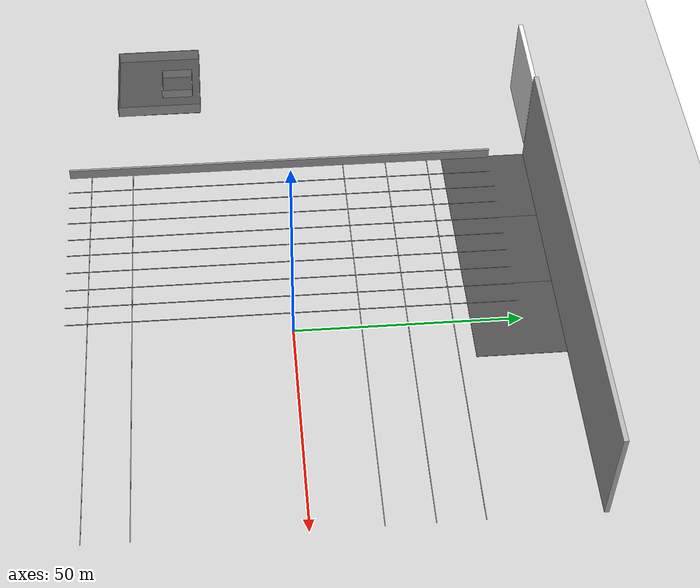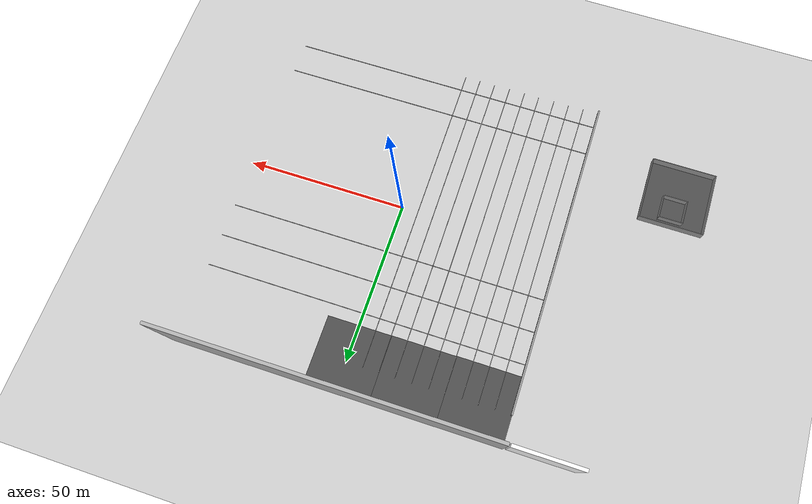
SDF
<sdf version="1.7">
 <world name="default">
  <model name="ground_plane">
   <static>1</static>
   <link name="link">
    <collision name="collision">
     <geometry><plane><normal>0 0 1</normal><size>100 100</size></plane></geometry>
     <surface><friction><ode><mu>100</mu><mu2>50</mu2></ode></friction></surface>
    </collision>
    <visual name="visual">
     <cast_shadows>0</cast_shadows>
     <geometry><plane><normal>0 0 1</normal><size>100 100</size></plane></geometry>
     <material>
      <script><uri>file://media/materials/scripts/gazebo.material</uri><name>Gazebo/Grey</name></script>
     </material>
    </visual>
   </link>
  </model>
  <model name="gridline100m_clone_0_clone_clone_0">
   <link name="Wall_2">
    <pose>2e-06 -3.05812 0 0 -0 1.571</pose>
    <inertial>
     <mass>1</mass>
     <inertia><ixx>1</ixx><ixy>0</ixy><ixz>0</ixz><iyy>1</iyy><iyz>0</iyz><izz>1</izz></inertia>
    </inertial>
    <visual name="Wall_2_Visual">
     <pose>0 0 0.075 0 -0 0</pose>
     <geometry><box><size>100 0.15 0.15</size></box></geometry>
     <material>
      <script><uri>file://media/materials/scripts/gazebo.material</uri><name>Gazebo/Grey</name></script>
      <ambient>0 0 0 1</ambient>
      <shader type="pixel"><normal_map>__default__</normal_map></shader>
      <diffuse>0.7 0.7 0.7 1</diffuse>
      <specular>0.01 0.01 0.01 1</specular>
      <emissive>0 0 0 1</emissive>
     </material>
     <meta><layer>0</layer></meta>
     <cast_shadows>0</cast_shadows>
    </visual>
    <collision name="Wall_2_Collision">
     <pose>0 0 0.075 0 -0 0</pose>
     <geometry><box><size>100 0.15 0.15</size></box></geometry>
     <surface>
      <friction>
       <ode><mu>1</mu><mu2>1</mu2><fdir1>0 0 0</fdir1><slip1>0</slip1><slip2>0</slip2></ode>
       <torsional>
        <coefficient>1</coefficient>
        <patch_radius>0</patch_radius>
        <surface_radius>0</surface_radius>
        <use_patch_radius>1</use_patch_radius>
        <ode><slip>0</slip></ode>
       </torsional>
      </friction>
      <bounce><restitution_coefficient>0</restitution_coefficient><threshold>1e+06</threshold></bounce>
      <contact>
       <collide_without_contact>0</collide_without_contact>
       <collide_without_contact_bitmask>1</collide_without_contact_bitmask>
       <collide_bitmask>1</collide_bitmask>
       <ode>
        <soft_cfm>0</soft_cfm>
        <soft_erp>0.2</soft_erp>
        <kp>1e+13</kp>
        <kd>1</kd>
        <max_vel>0.01</max_vel>
        <min_depth>0</min_depth>
       </ode>
       <bullet>
        <split_impulse>1</split_impulse>
        <split_impulse_penetration_threshold>-0.01</split_impulse_penetration_threshold>
        <soft_cfm>0</soft_cfm>
        <soft_erp>0.2</soft_erp>
        <kp>1e+13</kp>
        <kd>1</kd>
       </bullet>
      </contact>
     </surface>
    </collision>
   </link>
   <static>1</static>
   <pose>-9.96377 3.09569 0 0 -0 0</pose>
  </model>
  <model name="gridline100m_clone_0_clone_clone_0_clone">
   <link name="Wall_2">
    <pose>2e-06 -3.05812 0 0 -0 1.571</pose>
    <inertial>
     <mass>1</mass>
     <inertia><ixx>1</ixx><ixy>0</ixy><ixz>0</ixz><iyy>1</iyy><iyz>0</iyz><izz>1</izz></inertia>
    </inertial>
    <visual name="Wall_2_Visual">
     <pose>0 0 0.075 0 -0 0</pose>
     <geometry><box><size>100 0.15 0.15</size></box></geometry>
     <material>
      <script><uri>file://media/materials/scripts/gazebo.material</uri><name>Gazebo/Grey</name></script>
      <ambient>0 0 0 1</ambient>
      <shader type="pixel"><normal_map>__default__</normal_map></shader>
      <diffuse>0.7 0.7 0.7 1</diffuse>
      <specular>0.01 0.01 0.01 1</specular>
      <emissive>0 0 0 1</emissive>
     </material>
     <meta><layer>0</layer></meta>
     <cast_shadows>0</cast_shadows>
    </visual>
    <collision name="Wall_2_Collision">
     <pose>0 0 0.075 0 -0 0</pose>
     <geometry><box><size>100 0.15 0.15</size></box></geometry>
     <surface>
      <friction>
       <ode><mu>1</mu><mu2>1</mu2><fdir1>0 0 0</fdir1><slip1>0</slip1><slip2>0</slip2></ode>
       <torsional>
        <coefficient>1</coefficient>
        <patch_radius>0</patch_radius>
        <surface_radius>0</surface_radius>
        <use_patch_radius>1</use_patch_radius>
        <ode><slip>0</slip></ode>
       </torsional>
      </friction>
      <bounce><restitution_coefficient>0</restitution_coefficient><threshold>1e+06</threshold></bounce>
      <contact>
       <collide_without_contact>0</collide_without_contact>
       <collide_without_contact_bitmask>1</collide_without_contact_bitmask>
       <collide_bitmask>1</collide_bitmask>
       <ode>
        <soft_cfm>0</soft_cfm>
        <soft_erp>0.2</soft_erp>
        <kp>1e+13</kp>
        <kd>1</kd>
        <max_vel>0.01</max_vel>
        <min_depth>0</min_depth>
       </ode>
       <bullet>
        <split_impulse>1</split_impulse>
        <split_impulse_penetration_threshold>-0.01</split_impulse_penetration_threshold>
        <soft_cfm>0</soft_cfm>
        <soft_erp>0.2</soft_erp>
        <kp>1e+13</kp>
        <kd>1</kd>
       </bullet>
      </contact>
     </surface>
    </collision>
   </link>
   <static>1</static>
   <pose>-20.0665 3.08574 0 0 -0 0</pose>
  </model>
  <model name="gridline100m_clone_0_clone_clone_0_clone_clone">
   <link name="Wall_2">
    <pose>2e-06 -3.05812 0 0 -0 1.571</pose>
    <inertial>
     <mass>1</mass>
     <inertia><ixx>1</ixx><ixy>0</ixy><ixz>0</ixz><iyy>1</iyy><iyz>0</iyz><izz>1</izz></inertia>
    </inertial>
    <visual name="Wall_2_Visual">
     <pose>0 0 0.075 0 -0 0</pose>
     <geometry><box><size>100 0.15 0.15</size></box></geometry>
     <material>
      <script><uri>file://media/materials/scripts/gazebo.material</uri><name>Gazebo/Grey</name></script>
      <ambient>0 0 0 1</ambient>
      <shader type="pixel"><normal_map>__default__</normal_map></shader>
      <diffuse>0.7 0.7 0.7 1</diffuse>
      <specular>0.01 0.01 0.01 1</specular>
      <emissive>0 0 0 1</emissive>
     </material>
     <meta><layer>0</layer></meta>
     <cast_shadows>0</cast_shadows>
    </visual>
    <collision name="Wall_2_Collision">
     <pose>0 0 0.075 0 -0 0</pose>
     <geometry><box><size>100 0.15 0.15</size></box></geometry>
     <surface>
      <friction>
       <ode><mu>1</mu><mu2>1</mu2><fdir1>0 0 0</fdir1><slip1>0</slip1><slip2>0</slip2></ode>
       <torsional>
        <coefficient>1</coefficient>
        <patch_radius>0</patch_radius>
        <surface_radius>0</surface_radius>
        <use_patch_radius>1</use_patch_radius>
        <ode><slip>0</slip></ode>
       </torsional>
      </friction>
      <bounce><restitution_coefficient>0</restitution_coefficient><threshold>1e+06</threshold></bounce>
      <contact>
       <collide_without_contact>0</collide_without_contact>
       <collide_without_contact_bitmask>1</collide_without_contact_bitmask>
       <collide_bitmask>1</collide_bitmask>
       <ode>
        <soft_cfm>0</soft_cfm>
        <soft_erp>0.2</soft_erp>
        <kp>1e+13</kp>
        <kd>1</kd>
        <max_vel>0.01</max_vel>
        <min_depth>0</min_depth>
       </ode>
       <bullet>
        <split_impulse>1</split_impulse>
        <split_impulse_penetration_threshold>-0.01</split_impulse_penetration_threshold>
        <soft_cfm>0</soft_cfm>
        <soft_erp>0.2</soft_erp>
        <kp>1e+13</kp>
        <kd>1</kd>
       </bullet>
      </contact>
     </surface>
    </collision>
   </link>
   <static>1</static>
   <pose>-30.0159 3.12682 0 0 -0 0</pose>
  </model>
  <model name="gridline100m_clone_0_clone_clone_0_clone_clone_clone">
   <link name="Wall_2">
    <pose>2e-06 -3.05812 0 0 -0 1.571</pose>
    <inertial>
     <mass>1</mass>
     <inertia><ixx>1</ixx><ixy>0</ixy><ixz>0</ixz><iyy>1</iyy><iyz>0</iyz><izz>1</izz></inertia>
    </inertial>
    <visual name="Wall_2_Visual">
     <pose>0 0 0.075 0 -0 0</pose>
     <geometry><box><size>100 0.15 0.15</size></box></geometry>
     <material>
      <script><uri>file://media/materials/scripts/gazebo.material</uri><name>Gazebo/Grey</name></script>
      <ambient>0 0 0 1</ambient>
      <shader type="pixel"><normal_map>__default__</normal_map></shader>
      <diffuse>0.7 0.7 0.7 1</diffuse>
      <specular>0.01 0.01 0.01 1</specular>
      <emissive>0 0 0 1</emissive>
     </material>
     <meta><layer>0</layer></meta>
     <cast_shadows>0</cast_shadows>
    </visual>
    <collision name="Wall_2_Collision">
     <pose>0 0 0.075 0 -0 0</pose>
     <geometry><box><size>100 0.15 0.15</size></box></geometry>
     <surface>
      <friction>
       <ode><mu>1</mu><mu2>1</mu2><fdir1>0 0 0</fdir1><slip1>0</slip1><slip2>0</slip2></ode>
       <torsional>
        <coefficient>1</coefficient>
        <patch_radius>0</patch_radius>
        <surface_radius>0</surface_radius>
        <use_patch_radius>1</use_patch_radius>
        <ode><slip>0</slip></ode>
       </torsional>
      </friction>
      <bounce><restitution_coefficient>0</restitution_coefficient><threshold>1e+06</threshold></bounce>
      <contact>
       <collide_without_contact>0</collide_without_contact>
       <collide_without_contact_bitmask>1</collide_without_contact_bitmask>
       <collide_bitmask>1</collide_bitmask>
       <ode>
        <soft_cfm>0</soft_cfm>
        <soft_erp>0.2</soft_erp>
        <kp>1e+13</kp>
        <kd>1</kd>
        <max_vel>0.01</max_vel>
        <min_depth>0</min_depth>
       </ode>
       <bullet>
        <split_impulse>1</split_impulse>
        <split_impulse_penetration_threshold>-0.01</split_impulse_penetration_threshold>
        <soft_cfm>0</soft_cfm>
        <soft_erp>0.2</soft_erp>
        <kp>1e+13</kp>
        <kd>1</kd>
       </bullet>
      </contact>
     </surface>
    </collision>
   </link>
   <static>1</static>
   <pose>-40.0496 3.09833 0 0 -0 0</pose>
  </model>
  <model name="100mfence_clone_clone">
   <link name="Wall_0">
    <pose>-13.0161 -13.4589 0 0 -0 1.571</pose>
    <inertial>
     <mass>1</mass>
     <inertia><ixx>1</ixx><ixy>0</ixy><ixz>0</ixz><iyy>1</iyy><iyz>0</iyz><izz>1</izz></inertia>
    </inertial>
    <visual name="Wall_0_Visual">
     <pose>0 0 1.25 0 -0 0</pose>
     <geometry><box><size>100 0.5 2.5</size></box></geometry>
     <material>
      <script><uri>file://media/materials/scripts/gazebo.material</uri><name>Gazebo/Grey</name></script>
      <ambient>0.5 0.5 0.5 1</ambient>
      <shader type="pixel"><normal_map>__default__</normal_map></shader>
      <diffuse>0.5 0.5 0.5 1</diffuse>
      <specular>0.5 0.5 0.5 1</specular>
      <emissive>0 0 0 1</emissive>
     </material>
     <meta><layer>0</layer></meta>
     <cast_shadows>0</cast_shadows>
    </visual>
    <collision name="Wall_0_Collision">
     <pose>0 0 1.25 0 -0 0</pose>
     <geometry><box><size>100 0.15 2.5</size></box></geometry>
     <surface>
      <friction>
       <ode><mu>1</mu><mu2>1</mu2><fdir1>0 0 0</fdir1><slip1>0</slip1><slip2>0</slip2></ode>
       <torsional>
        <coefficient>1</coefficient>
        <patch_radius>0</patch_radius>
        <surface_radius>0</surface_radius>
        <use_patch_radius>1</use_patch_radius>
        <ode><slip>0</slip></ode>
       </torsional>
      </friction>
      <bounce><restitution_coefficient>0</restitution_coefficient><threshold>1e+06</threshold></bounce>
      <contact>
       <collide_without_contact>0</collide_without_contact>
       <collide_without_contact_bitmask>1</collide_without_contact_bitmask>
       <collide_bitmask>1</collide_bitmask>
       <ode>
        <soft_cfm>0</soft_cfm>
        <soft_erp>0.2</soft_erp>
        <kp>1e+13</kp>
        <kd>1</kd>
        <max_vel>0.01</max_vel>
        <min_depth>0</min_depth>
       </ode>
       <bullet>
        <split_impulse>1</split_impulse>
        <split_impulse_penetration_threshold>-0.01</split_impulse_penetration_threshold>
        <soft_cfm>0</soft_cfm>
        <soft_erp>0.2</soft_erp>
        <kp>1e+13</kp>
        <kd>1</kd>
       </bullet>
      </contact>
     </surface>
    </collision>
   </link>
   <static>1</static>
   <pose>-36.9334 13.4626 0 0 -0 0</pose>
  </model>
  <model name="helipadboundary_0">
   <link name="Wall_10">
    <pose>-0.049274 -3.675 0 0 -0 0</pose>
    <inertial>
     <mass>1</mass>
     <inertia><ixx>1</ixx><ixy>0</ixy><ixz>0</ixz><iyy>1</iyy><iyz>0</iyz><izz>1</izz></inertia>
    </inertial>
    <visual name="Wall_10_Visual">
     <pose>0 0 1.25 0 -0 0</pose>
     <geometry><box><size>7.5 0.15 2.5</size></box></geometry>
     <material>
      <script><uri>file://media/materials/scripts/gazebo.material</uri><name>Gazebo/Grey</name></script>
      <ambient>0.5 0.5 0.5 1</ambient>
      <shader type="pixel"><normal_map>__default__</normal_map></shader>
      <diffuse>0.5 0.5 0.5 1</diffuse>
      <specular>0.5 0.5 0.5 1</specular>
      <emissive>0 0 0 1</emissive>
     </material>
     <meta><layer>0</layer></meta>
     <cast_shadows>0</cast_shadows>
    </visual>
    <collision name="Wall_10_Collision">
     <pose>0 0 1.25 0 -0 0</pose>
     <geometry><box><size>7.5 0.15 2.5</size></box></geometry>
     <surface>
      <friction>
       <ode><mu>1</mu><mu2>1</mu2><fdir1>0 0 0</fdir1><slip1>0</slip1><slip2>0</slip2></ode>
       <torsional>
        <coefficient>1</coefficient>
        <patch_radius>0</patch_radius>
        <surface_radius>0</surface_radius>
        <use_patch_radius>1</use_patch_radius>
        <ode><slip>0</slip></ode>
       </torsional>
      </friction>
      <bounce><restitution_coefficient>0</restitution_coefficient><threshold>1e+06</threshold></bounce>
      <contact>
       <collide_without_contact>0</collide_without_contact>
       <collide_without_contact_bitmask>1</collide_without_contact_bitmask>
       <collide_bitmask>1</collide_bitmask>
       <ode>
        <soft_cfm>0</soft_cfm>
        <soft_erp>0.2</soft_erp>
        <kp>1e+13</kp>
        <kd>1</kd>
        <max_vel>0.01</max_vel>
        <min_depth>0</min_depth>
       </ode>
       <bullet>
        <split_impulse>1</split_impulse>
        <split_impulse_penetration_threshold>-0.01</split_impulse_penetration_threshold>
        <soft_cfm>0</soft_cfm>
        <soft_erp>0.2</soft_erp>
        <kp>1e+13</kp>
        <kd>1</kd>
       </bullet>
      </contact>
     </surface>
    </collision>
   </link>
   <link name="Wall_12">
    <pose>3.62573 0 0 0 -0 1.5708</pose>
    <inertial>
     <mass>1</mass>
     <inertia><ixx>1</ixx><ixy>0</ixy><ixz>0</ixz><iyy>1</iyy><iyz>0</iyz><izz>1</izz></inertia>
    </inertial>
    <visual name="Wall_12_Visual">
     <pose>0 0 1.25 0 -0 0</pose>
     <geometry><box><size>7.5 0.15 2.5</size></box></geometry>
     <material>
      <script><uri>file://media/materials/scripts/gazebo.material</uri><name>Gazebo/Grey</name></script>
      <ambient>0.5 0.5 0.5 1</ambient>
      <shader type="pixel"><normal_map>__default__</normal_map></shader>
      <diffuse>0.5 0.5 0.5 1</diffuse>
      <specular>0.5 0.5 0.5 1</specular>
      <emissive>0 0 0 1</emissive>
     </material>
     <meta><layer>0</layer></meta>
     <cast_shadows>0</cast_shadows>
    </visual>
    <collision name="Wall_12_Collision">
     <pose>0 0 1.25 0 -0 0</pose>
     <geometry><box><size>7.5 0.15 2.5</size></box></geometry>
     <surface>
      <friction>
       <ode><mu>1</mu><mu2>1</mu2><fdir1>0 0 0</fdir1><slip1>0</slip1><slip2>0</slip2></ode>
       <torsional>
        <coefficient>1</coefficient>
        <patch_radius>0</patch_radius>
        <surface_radius>0</surface_radius>
        <use_patch_radius>1</use_patch_radius>
        <ode><slip>0</slip></ode>
       </torsional>
      </friction>
      <bounce><restitution_coefficient>0</restitution_coefficient><threshold>1e+06</threshold></bounce>
      <contact>
       <collide_without_contact>0</collide_without_contact>
       <collide_without_contact_bitmask>1</collide_without_contact_bitmask>
       <collide_bitmask>1</collide_bitmask>
       <ode>
        <soft_cfm>0</soft_cfm>
        <soft_erp>0.2</soft_erp>
        <kp>1e+13</kp>
        <kd>1</kd>
        <max_vel>0.01</max_vel>
        <min_depth>0</min_depth>
       </ode>
       <bullet>
        <split_impulse>1</split_impulse>
        <split_impulse_penetration_threshold>-0.01</split_impulse_penetration_threshold>
        <soft_cfm>0</soft_cfm>
        <soft_erp>0.2</soft_erp>
        <kp>1e+13</kp>
        <kd>1</kd>
       </bullet>
      </contact>
     </surface>
    </collision>
   </link>
   <link name="Wall_13">
    <pose>-0.049274 3.675 0 0 -0 3.14159</pose>
    <inertial>
     <mass>1</mass>
     <inertia><ixx>1</ixx><ixy>0</ixy><ixz>0</ixz><iyy>1</iyy><iyz>0</iyz><izz>1</izz></inertia>
    </inertial>
    <visual name="Wall_13_Visual">
     <pose>0 0 1.25 0 -0 0</pose>
     <geometry><box><size>7.5 0.15 2.5</size></box></geometry>
     <material>
      <script><uri>file://media/materials/scripts/gazebo.material</uri><name>Gazebo/Grey</name></script>
      <ambient>0.5 0.5 0.5 1</ambient>
      <shader type="pixel"><normal_map>__default__</normal_map></shader>
      <diffuse>0.5 0.5 0.5 1</diffuse>
      <specular>0.5 0.5 0.5 1</specular>
      <emissive>0 0 0 1</emissive>
     </material>
     <meta><layer>0</layer></meta>
     <cast_shadows>0</cast_shadows>
    </visual>
    <collision name="Wall_13_Collision">
     <pose>0 0 1.25 0 -0 0</pose>
     <geometry><box><size>7.5 0.15 2.5</size></box></geometry>
     <surface>
      <friction>
       <ode><mu>1</mu><mu2>1</mu2><fdir1>0 0 0</fdir1><slip1>0</slip1><slip2>0</slip2></ode>
       <torsional>
        <coefficient>1</coefficient>
        <patch_radius>0</patch_radius>
        <surface_radius>0</surface_radius>
        <use_patch_radius>1</use_patch_radius>
        <ode><slip>0</slip></ode>
       </torsional>
      </friction>
      <bounce><restitution_coefficient>0</restitution_coefficient><threshold>1e+06</threshold></bounce>
      <contact>
       <collide_without_contact>0</collide_without_contact>
       <collide_without_contact_bitmask>1</collide_without_contact_bitmask>
       <collide_bitmask>1</collide_bitmask>
       <ode>
        <soft_cfm>0</soft_cfm>
        <soft_erp>0.2</soft_erp>
        <kp>1e+13</kp>
        <kd>1</kd>
        <max_vel>0.01</max_vel>
        <min_depth>0</min_depth>
       </ode>
       <bullet>
        <split_impulse>1</split_impulse>
        <split_impulse_penetration_threshold>-0.01</split_impulse_penetration_threshold>
        <soft_cfm>0</soft_cfm>
        <soft_erp>0.2</soft_erp>
        <kp>1e+13</kp>
        <kd>1</kd>
       </bullet>
      </contact>
     </surface>
    </collision>
   </link>
   <link name="Wall_14">
    <pose>-3.72427 0 0 0 0 -1.5708</pose>
    <inertial>
     <mass>1</mass>
     <inertia><ixx>1</ixx><ixy>0</ixy><ixz>0</ixz><iyy>1</iyy><iyz>0</iyz><izz>1</izz></inertia>
    </inertial>
    <visual name="Wall_14_Visual">
     <pose>0 0 1.25 0 -0 0</pose>
     <geometry><box><size>7.5 0.15 2.5</size></box></geometry>
     <material>
      <script><uri>file://media/materials/scripts/gazebo.material</uri><name>Gazebo/Grey</name></script>
      <ambient>0.5 0.5 0.5 1</ambient>
      <shader type="pixel"><normal_map>__default__</normal_map></shader>
      <diffuse>0.5 0.5 0.5 1</diffuse>
      <specular>0.5 0.5 0.5 1</specular>
      <emissive>0 0 0 1</emissive>
     </material>
     <meta><layer>0</layer></meta>
     <cast_shadows>0</cast_shadows>
    </visual>
    <collision name="Wall_14_Collision">
     <pose>0 0 1.25 0 -0 0</pose>
     <geometry><box><size>7.5 0.15 2.5</size></box></geometry>
     <surface>
      <friction>
       <ode><mu>1</mu><mu2>1</mu2><fdir1>0 0 0</fdir1><slip1>0</slip1><slip2>0</slip2></ode>
       <torsional>
        <coefficient>1</coefficient>
        <patch_radius>0</patch_radius>
        <surface_radius>0</surface_radius>
        <use_patch_radius>1</use_patch_radius>
        <ode><slip>0</slip></ode>
       </torsional>
      </friction>
      <bounce><restitution_coefficient>0</restitution_coefficient><threshold>1e+06</threshold></bounce>
      <contact>
       <collide_without_contact>0</collide_without_contact>
       <collide_without_contact_bitmask>1</collide_without_contact_bitmask>
       <collide_bitmask>1</collide_bitmask>
       <ode>
        <soft_cfm>0</soft_cfm>
        <soft_erp>0.2</soft_erp>
        <kp>1e+13</kp>
        <kd>1</kd>
        <max_vel>0.01</max_vel>
        <min_depth>0</min_depth>
       </ode>
       <bullet>
        <split_impulse>1</split_impulse>
        <split_impulse_penetration_threshold>-0.01</split_impulse_penetration_threshold>
        <soft_cfm>0</soft_cfm>
        <soft_erp>0.2</soft_erp>
        <kp>1e+13</kp>
        <kd>1</kd>
       </bullet>
      </contact>
     </surface>
    </collision>
   </link>
   <static>1</static>
   <pose>-79.8103 -24.2514 0 0 -0 0</pose>
  </model>
  <model name="gridline100m_clone_0_clone_clone_0_clone_clone_clone_clone">
   <link name="Wall_2">
    <pose>2e-06 -3.05812 0 0 -0 1.571</pose>
    <inertial>
     <mass>1</mass>
     <inertia><ixx>1</ixx><ixy>0</ixy><ixz>0</ixz><iyy>1</iyy><iyz>0</iyz><izz>1</izz></inertia>
    </inertial>
    <visual name="Wall_2_Visual">
     <pose>0 0 0.075 0 -0 0</pose>
     <geometry><box><size>100 0.15 0.15</size></box></geometry>
     <material>
      <script><uri>file://media/materials/scripts/gazebo.material</uri><name>Gazebo/Grey</name></script>
      <ambient>0 0 0 1</ambient>
      <shader type="pixel"><normal_map>__default__</normal_map></shader>
      <diffuse>0.7 0.7 0.7 1</diffuse>
      <specular>0.01 0.01 0.01 1</specular>
      <emissive>0 0 0 1</emissive>
     </material>
     <meta><layer>0</layer></meta>
     <cast_shadows>0</cast_shadows>
    </visual>
    <collision name="Wall_2_Collision">
     <pose>0 0 0.075 0 -0 0</pose>
     <geometry><box><size>100 0.15 0.15</size></box></geometry>
     <surface>
      <friction>
       <ode><mu>1</mu><mu2>1</mu2><fdir1>0 0 0</fdir1><slip1>0</slip1><slip2>0</slip2></ode>
       <torsional>
        <coefficient>1</coefficient>
        <patch_radius>0</patch_radius>
        <surface_radius>0</surface_radius>
        <use_patch_radius>1</use_patch_radius>
        <ode><slip>0</slip></ode>
       </torsional>
      </friction>
      <bounce><restitution_coefficient>0</restitution_coefficient><threshold>1e+06</threshold></bounce>
      <contact>
       <collide_without_contact>0</collide_without_contact>
       <collide_without_contact_bitmask>1</collide_without_contact_bitmask>
       <collide_bitmask>1</collide_bitmask>
       <ode>
        <soft_cfm>0</soft_cfm>
        <soft_erp>0.2</soft_erp>
        <kp>1e+13</kp>
        <kd>1</kd>
        <max_vel>0.01</max_vel>
        <min_depth>0</min_depth>
       </ode>
       <bullet>
        <split_impulse>1</split_impulse>
        <split_impulse_penetration_threshold>-0.01</split_impulse_penetration_threshold>
        <soft_cfm>0</soft_cfm>
        <soft_erp>0.2</soft_erp>
        <kp>1e+13</kp>
        <kd>1</kd>
       </bullet>
      </contact>
     </surface>
    </collision>
   </link>
   <static>1</static>
   <pose>-44.9764 2.88672 0 0 -0 0</pose>
  </model>
  <model name="gridline100m_clone_0_clone_clone_0_clone_clone_clone_clone_clone">
   <link name="Wall_2">
    <pose>2e-06 -3.05812 0 0 -0 1.571</pose>
    <inertial>
     <mass>1</mass>
     <inertia><ixx>1</ixx><ixy>0</ixy><ixz>0</ixz><iyy>1</iyy><iyz>0</iyz><izz>1</izz></inertia>
    </inertial>
    <visual name="Wall_2_Visual">
     <pose>0 0 0.075 0 -0 0</pose>
     <geometry><box><size>100 0.15 0.15</size></box></geometry>
     <material>
      <script><uri>file://media/materials/scripts/gazebo.material</uri><name>Gazebo/Grey</name></script>
      <ambient>0 0 0 1</ambient>
      <shader type="pixel"><normal_map>__default__</normal_map></shader>
      <diffuse>0.7 0.7 0.7 1</diffuse>
      <specular>0.01 0.01 0.01 1</specular>
      <emissive>0 0 0 1</emissive>
     </material>
     <meta><layer>0</layer></meta>
     <cast_shadows>0</cast_shadows>
    </visual>
    <collision name="Wall_2_Collision">
     <pose>0 0 0.075 0 -0 0</pose>
     <geometry><box><size>100 0.15 0.15</size></box></geometry>
     <surface>
      <friction>
       <ode><mu>1</mu><mu2>1</mu2><fdir1>0 0 0</fdir1><slip1>0</slip1><slip2>0</slip2></ode>
       <torsional>
        <coefficient>1</coefficient>
        <patch_radius>0</patch_radius>
        <surface_radius>0</surface_radius>
        <use_patch_radius>1</use_patch_radius>
        <ode><slip>0</slip></ode>
       </torsional>
      </friction>
      <bounce><restitution_coefficient>0</restitution_coefficient><threshold>1e+06</threshold></bounce>
      <contact>
       <collide_without_contact>0</collide_without_contact>
       <collide_without_contact_bitmask>1</collide_without_contact_bitmask>
       <collide_bitmask>1</collide_bitmask>
       <ode>
        <soft_cfm>0</soft_cfm>
        <soft_erp>0.2</soft_erp>
        <kp>1e+13</kp>
        <kd>1</kd>
        <max_vel>0.01</max_vel>
        <min_depth>0</min_depth>
       </ode>
       <bullet>
        <split_impulse>1</split_impulse>
        <split_impulse_penetration_threshold>-0.01</split_impulse_penetration_threshold>
        <soft_cfm>0</soft_cfm>
        <soft_erp>0.2</soft_erp>
        <kp>1e+13</kp>
        <kd>1</kd>
       </bullet>
      </contact>
     </surface>
    </collision>
   </link>
   <static>1</static>
   <pose>-35.1397 2.90502 0 0 -0 0</pose>
  </model>
  <model name="gridline100m_clone_0_clone_clone_0_clone_clone_clone_clone_clone_0">
   <link name="Wall_2">
    <pose>2e-06 -3.05812 0 0 -0 1.571</pose>
    <inertial>
     <mass>1</mass>
     <inertia><ixx>1</ixx><ixy>0</ixy><ixz>0</ixz><iyy>1</iyy><iyz>0</iyz><izz>1</izz></inertia>
    </inertial>
    <visual name="Wall_2_Visual">
     <pose>0 0 0.075 0 -0 0</pose>
     <geometry><box><size>100 0.15 0.15</size></box></geometry>
     <material>
      <script><uri>file://media/materials/scripts/gazebo.material</uri><name>Gazebo/Grey</name></script>
      <ambient>0 0 0 1</ambient>
      <shader type="pixel"><normal_map>__default__</normal_map></shader>
      <diffuse>0.7 0.7 0.7 1</diffuse>
      <specular>0.01 0.01 0.01 1</specular>
      <emissive>0 0 0 1</emissive>
     </material>
     <meta><layer>0</layer></meta>
     <cast_shadows>0</cast_shadows>
    </visual>
    <collision name="Wall_2_Collision">
     <pose>0 0 0.075 0 -0 0</pose>
     <geometry><box><size>100 0.15 0.15</size></box></geometry>
     <surface>
      <friction>
       <ode><mu>1</mu><mu2>1</mu2><fdir1>0 0 0</fdir1><slip1>0</slip1><slip2>0</slip2></ode>
       <torsional>
        <coefficient>1</coefficient>
        <patch_radius>0</patch_radius>
        <surface_radius>0</surface_radius>
        <use_patch_radius>1</use_patch_radius>
        <ode><slip>0</slip></ode>
       </torsional>
      </friction>
      <bounce><restitution_coefficient>0</restitution_coefficient><threshold>1e+06</threshold></bounce>
      <contact>
       <collide_without_contact>0</collide_without_contact>
       <collide_without_contact_bitmask>1</collide_without_contact_bitmask>
       <collide_bitmask>1</collide_bitmask>
       <ode>
        <soft_cfm>0</soft_cfm>
        <soft_erp>0.2</soft_erp>
        <kp>1e+13</kp>
        <kd>1</kd>
        <max_vel>0.01</max_vel>
        <min_depth>0</min_depth>
       </ode>
       <bullet>
        <split_impulse>1</split_impulse>
        <split_impulse_penetration_threshold>-0.01</split_impulse_penetration_threshold>
        <soft_cfm>0</soft_cfm>
        <soft_erp>0.2</soft_erp>
        <kp>1e+13</kp>
        <kd>1</kd>
       </bullet>
      </contact>
     </surface>
    </collision>
   </link>
   <static>1</static>
   <pose>-25.1946 3.11028 0 0 -0 0</pose>
  </model>
  <model name="gridline100m_clone_0_clone_clone_0_clone_clone_clone_clone_clone_1">
   <link name="Wall_2">
    <pose>2e-06 -3.05812 0 0 -0 1.571</pose>
    <inertial>
     <mass>1</mass>
     <inertia><ixx>1</ixx><ixy>0</ixy><ixz>0</ixz><iyy>1</iyy><iyz>0</iyz><izz>1</izz></inertia>
    </inertial>
    <visual name="Wall_2_Visual">
     <pose>0 0 0.075 0 -0 0</pose>
     <geometry><box><size>100 0.15 0.15</size></box></geometry>
     <material>
      <script><uri>file://media/materials/scripts/gazebo.material</uri><name>Gazebo/Grey</name></script>
      <ambient>0 0 0 1</ambient>
      <shader type="pixel"><normal_map>__default__</normal_map></shader>
      <diffuse>0.7 0.7 0.7 1</diffuse>
      <specular>0.01 0.01 0.01 1</specular>
      <emissive>0 0 0 1</emissive>
     </material>
     <meta><layer>0</layer></meta>
     <cast_shadows>0</cast_shadows>
    </visual>
    <collision name="Wall_2_Collision">
     <pose>0 0 0.075 0 -0 0</pose>
     <geometry><box><size>100 0.15 0.15</size></box></geometry>
     <surface>
      <friction>
       <ode><mu>1</mu><mu2>1</mu2><fdir1>0 0 0</fdir1><slip1>0</slip1><slip2>0</slip2></ode>
       <torsional>
        <coefficient>1</coefficient>
        <patch_radius>0</patch_radius>
        <surface_radius>0</surface_radius>
        <use_patch_radius>1</use_patch_radius>
        <ode><slip>0</slip></ode>
       </torsional>
      </friction>
      <bounce><restitution_coefficient>0</restitution_coefficient><threshold>1e+06</threshold></bounce>
      <contact>
       <collide_without_contact>0</collide_without_contact>
       <collide_without_contact_bitmask>1</collide_without_contact_bitmask>
       <collide_bitmask>1</collide_bitmask>
       <ode>
        <soft_cfm>0</soft_cfm>
        <soft_erp>0.2</soft_erp>
        <kp>1e+13</kp>
        <kd>1</kd>
        <max_vel>0.01</max_vel>
        <min_depth>0</min_depth>
       </ode>
       <bullet>
        <split_impulse>1</split_impulse>
        <split_impulse_penetration_threshold>-0.01</split_impulse_penetration_threshold>
        <soft_cfm>0</soft_cfm>
        <soft_erp>0.2</soft_erp>
        <kp>1e+13</kp>
        <kd>1</kd>
       </bullet>
      </contact>
     </surface>
    </collision>
   </link>
   <static>1</static>
   <pose>-14.9493 3.16662 0 0 -0 0</pose>
  </model>
  <model name="gridline100m_clone_0_clone_clone_0_clone_clone_clone_clone_clone_2">
   <link name="Wall_2">
    <pose>2e-06 -3.05812 0 0 -0 1.571</pose>
    <inertial>
     <mass>1</mass>
     <inertia><ixx>1</ixx><ixy>0</ixy><ixz>0</ixz><iyy>1</iyy><iyz>0</iyz><izz>1</izz></inertia>
    </inertial>
    <visual name="Wall_2_Visual">
     <pose>0 0 0.075 0 -0 0</pose>
     <geometry><box><size>100 0.15 0.15</size></box></geometry>
     <material>
      <script><uri>file://media/materials/scripts/gazebo.material</uri><name>Gazebo/Grey</name></script>
      <ambient>0 0 0 1</ambient>
      <shader type="pixel"><normal_map>__default__</normal_map></shader>
      <diffuse>0.7 0.7 0.7 1</diffuse>
      <specular>0.01 0.01 0.01 1</specular>
      <emissive>0 0 0 1</emissive>
     </material>
     <meta><layer>0</layer></meta>
     <cast_shadows>0</cast_shadows>
    </visual>
    <collision name="Wall_2_Collision">
     <pose>0 0 0.075 0 -0 0</pose>
     <geometry><box><size>100 0.15 0.15</size></box></geometry>
     <surface>
      <friction>
       <ode><mu>1</mu><mu2>1</mu2><fdir1>0 0 0</fdir1><slip1>0</slip1><slip2>0</slip2></ode>
       <torsional>
        <coefficient>1</coefficient>
        <patch_radius>0</patch_radius>
        <surface_radius>0</surface_radius>
        <use_patch_radius>1</use_patch_radius>
        <ode><slip>0</slip></ode>
       </torsional>
      </friction>
      <bounce><restitution_coefficient>0</restitution_coefficient><threshold>1e+06</threshold></bounce>
      <contact>
       <collide_without_contact>0</collide_without_contact>
       <collide_without_contact_bitmask>1</collide_without_contact_bitmask>
       <collide_bitmask>1</collide_bitmask>
       <ode>
        <soft_cfm>0</soft_cfm>
        <soft_erp>0.2</soft_erp>
        <kp>1e+13</kp>
        <kd>1</kd>
        <max_vel>0.01</max_vel>
        <min_depth>0</min_depth>
       </ode>
       <bullet>
        <split_impulse>1</split_impulse>
        <split_impulse_penetration_threshold>-0.01</split_impulse_penetration_threshold>
        <soft_cfm>0</soft_cfm>
        <soft_erp>0.2</soft_erp>
        <kp>1e+13</kp>
        <kd>1</kd>
       </bullet>
      </contact>
     </surface>
    </collision>
   </link>
   <static>1</static>
   <pose>-5.09112 3.1995 0 0 -0 0</pose>
  </model>
  <model name="gridline100m_clone_1_clone_clone_clone">
   <pose>-0.178603 -41.8137 0 0 -0 0</pose>
   <link name="Wall_2">
    <collision name="Wall_2_Collision">
     <geometry><box><size>100 0.15 0.15</size></box></geometry>
     <pose>0 0 0.075 0 -0 0</pose>
    </collision>
    <visual name="Wall_2_Visual">
     <pose>0 0 0.075 0 -0 0</pose>
     <geometry><box><size>100 0.15 0.15</size></box></geometry>
     <material>
      <script><uri>file://media/materials/scripts/gazebo.material</uri><name>Gazebo/Grey</name></script>
      <ambient>0 0 0 1</ambient>
     </material>
     <meta><layer>0</layer></meta>
    </visual>
    <pose>2e-06 -3.05812 0 0 -0 0</pose>
   </link>
   <static>1</static>
  </model>
  <model name="gridline100m_clone_1_clone_clone_clone_0">
   <pose>-0.175898 -32.073 0 0 -0 0</pose>
   <link name="Wall_2">
    <collision name="Wall_2_Collision">
     <geometry><box><size>100 0.15 0.15</size></box></geometry>
     <pose>0 0 0.075 0 -0 0</pose>
    </collision>
    <visual name="Wall_2_Visual">
     <pose>0 0 0.075 0 -0 0</pose>
     <geometry><box><size>100 0.15 0.15</size></box></geometry>
     <material>
      <script><uri>file://media/materials/scripts/gazebo.material</uri><name>Gazebo/Grey</name></script>
      <ambient>0 0 0 1</ambient>
     </material>
     <meta><layer>0</layer></meta>
    </visual>
    <pose>2e-06 -3.05812 0 0 -0 0</pose>
   </link>
   <static>1</static>
  </model>
  <model name="gridline100m_clone_1_clone_clone_clone_5">
   <pose>-0.131801 17.9375 0 0 -0 0</pose>
   <link name="Wall_2">
    <collision name="Wall_2_Collision">
     <geometry><box><size>100 0.15 0.15</size></box></geometry>
     <pose>0 0 0.075 0 -0 0</pose>
    </collision>
    <visual name="Wall_2_Visual">
     <pose>0 0 0.075 0 -0 0</pose>
     <geometry><box><size>100 0.15 0.15</size></box></geometry>
     <material>
      <script><uri>file://media/materials/scripts/gazebo.material</uri><name>Gazebo/Grey</name></script>
      <ambient>0 0 0 1</ambient>
     </material>
     <meta><layer>0</layer></meta>
    </visual>
    <pose>2e-06 -3.05812 0 0 -0 0</pose>
   </link>
   <static>1</static>
  </model>
  <model name="gridline100m_clone_1_clone_clone_clone_6">
   <pose>-0.201417 28.1474 0 0 -0 0</pose>
   <link name="Wall_2">
    <collision name="Wall_2_Collision">
     <geometry><box><size>100 0.15 0.15</size></box></geometry>
     <pose>0 0 0.075 0 -0 0</pose>
    </collision>
    <visual name="Wall_2_Visual">
     <pose>0 0 0.075 0 -0 0</pose>
     <geometry><box><size>100 0.15 0.15</size></box></geometry>
     <material>
      <script><uri>file://media/materials/scripts/gazebo.material</uri><name>Gazebo/Grey</name></script>
      <ambient>0 0 0 1</ambient>
     </material>
     <meta><layer>0</layer></meta>
    </visual>
    <pose>2e-06 -3.05812 0 0 -0 0</pose>
   </link>
   <static>1</static>
  </model>
  <model name="gridline100m_clone_1_clone_clone_clone_7">
   <pose>-0.197948 38.0796 0 0 -0 0</pose>
   <link name="Wall_2">
    <collision name="Wall_2_Collision">
     <geometry><box><size>100 0.15 0.15</size></box></geometry>
     <pose>0 0 0.075 0 -0 0</pose>
    </collision>
    <visual name="Wall_2_Visual">
     <pose>0 0 0.075 0 -0 0</pose>
     <geometry><box><size>100 0.15 0.15</size></box></geometry>
     <material>
      <script><uri>file://media/materials/scripts/gazebo.material</uri><name>Gazebo/Grey</name></script>
      <ambient>0 0 0 1</ambient>
     </material>
     <meta><layer>0</layer></meta>
    </visual>
    <pose>2e-06 -3.05812 0 0 -0 0</pose>
   </link>
   <static>1</static>
  </model>
  <model name="asphalt_plane">
   <static>1</static>
   <link name="link">
    <collision name="collision"><geometry><box><size>20 20 0.1</size></box></geometry></collision>
    <visual name="visual">
     <cast_shadows>0</cast_shadows>
     <geometry><box><size>20 20 0.1</size></box></geometry>
     <material>
      <script>
       <uri>model://asphalt_plane/materials/scripts</uri>
       <uri>model://asphalt_plane/materials/textures</uri>
       <name>vrc/asphalt</name>
      </script>
     </material>
    </visual>
   </link>
   <pose>-80.2255 -28.729 0 0 -0 0</pose>
  </model>
  <model name="sse">
   <link name="link_1">
    <inertial>
     <mass>1</mass>
     <inertia>
      <ixx>0.166667</ixx>
      <ixy>0</ixy>
      <ixz>0</ixz>
      <iyy>0.166667</iyy>
      <iyz>0</iyz>
      <izz>0.166667</izz>
     </inertia>
    </inertial>
    <visual name="visual">
     <pose>0 0 12.5 0 -0 0</pose>
     <geometry><box><size>100 1 25</size></box></geometry>
     <material>
      <lighting>0</lighting>
      <script>
       <uri>model://sse/materials/scripts</uri>
       <uri>model://sse/materials/textures</uri>
       <name>model/WallTexture</name>
      </script>
      <shader type="pixel"><normal_map>__default__</normal_map></shader>
      <ambient>0.3 0.3 0.3 1</ambient>
      <diffuse>0.7 0.7 0.7 1</diffuse>
      <specular>0.01 0.01 0.01 1</specular>
      <emissive>0 0 0 1</emissive>
     </material>
     <cast_shadows>0</cast_shadows>
    </visual>
    <collision name="collision">
     <geometry><box><size>1 1 1</size></box></geometry>
     <surface>
      <friction>
       <ode><mu>1</mu><mu2>1</mu2><fdir1>0 0 0</fdir1><slip1>0</slip1><slip2>0</slip2></ode>
       <torsional>
        <coefficient>1</coefficient>
        <patch_radius>0</patch_radius>
        <surface_radius>0</surface_radius>
        <use_patch_radius>1</use_patch_radius>
        <ode><slip>0</slip></ode>
       </torsional>
      </friction>
      <bounce><restitution_coefficient>0</restitution_coefficient><threshold>1e+06</threshold></bounce>
      <contact>
       <collide_without_contact>0</collide_without_contact>
       <collide_without_contact_bitmask>1</collide_without_contact_bitmask>
       <collide_bitmask>1</collide_bitmask>
       <ode>
        <soft_cfm>0</soft_cfm>
        <soft_erp>0.2</soft_erp>
        <kp>1e+13</kp>
        <kd>1</kd>
        <max_vel>0.01</max_vel>
        <min_depth>0</min_depth>
       </ode>
       <bullet>
        <split_impulse>1</split_impulse>
        <split_impulse_penetration_threshold>-0.01</split_impulse_penetration_threshold>
        <soft_cfm>0</soft_cfm>
        <soft_erp>0.2</soft_erp>
        <kp>1e+13</kp>
        <kd>1</kd>
       </bullet>
      </contact>
     </surface>
    </collision>
   </link>
   <static>1</static>
   <pose>-0.129064 58.9658 0.023105 0 -0 0</pose>
  </model>
  <model name="blackwall20m">
   <pose>-80.2284 -17.202 -0.042155 0 -0 0</pose>
   <link name="Wall_0">
    <collision name="Wall_0_Collision">
     <geometry><box><size>20 0.15 3</size></box></geometry>
     <pose>0 0 1.5 0 -0 0</pose>
    </collision>
    <visual name="Wall_0_Visual">
     <pose>0 0 1.5 0 -0 0</pose>
     <geometry><box><size>20 0.15 3</size></box></geometry>
     <material>
      <script><uri>file://media/materials/scripts/gazebo.material</uri><name>Gazebo/Grey</name></script>
      <ambient>0 0 0 1</ambient>
     </material>
     <meta><layer>0</layer></meta>
    </visual>
    <pose>0 -1.4575 0 0 -0 0</pose>
   </link>
   <static>1</static>
  </model>
  <model name="blackwall20m_clone">
   <pose>-80.2247 -37.2593 -0.042155 0 -0 0</pose>
   <link name="Wall_0">
    <collision name="Wall_0_Collision">
     <geometry><box><size>20 0.15 3</size></box></geometry>
     <pose>0 0 1.5 0 -0 0</pose>
    </collision>
    <visual name="Wall_0_Visual">
     <pose>0 0 1.5 0 -0 0</pose>
     <geometry><box><size>20 0.15 3</size></box></geometry>
     <material>
      <script><uri>file://media/materials/scripts/gazebo.material</uri><name>Gazebo/Grey</name></script>
      <ambient>0 0 0 1</ambient>
     </material>
     <meta><layer>0</layer></meta>
    </visual>
    <pose>0 -1.4575 0 0 -0 0</pose>
   </link>
   <static>1</static>
  </model>
  <model name="blackwall20m_clone_clone">
   <pose>-71.7588 -28.6517 -0.042155 0 -0 1.571</pose>
   <link name="Wall_0">
    <collision name="Wall_0_Collision">
     <geometry><box><size>20 0.15 3</size></box></geometry>
     <pose>0 0 1.5 0 -0 0</pose>
    </collision>
    <visual name="Wall_0_Visual">
     <pose>0 0 1.5 0 -0 0</pose>
     <geometry><box><size>20 0.15 3</size></box></geometry>
     <material>
      <script><uri>file://media/materials/scripts/gazebo.material</uri><name>Gazebo/Grey</name></script>
      <ambient>0 0 0 1</ambient>
     </material>
     <meta><layer>0</layer></meta>
    </visual>
    <pose>0 -1.4575 0 0 -0 0</pose>
   </link>
   <static>1</static>
  </model>
  <model name="blackwall20m_clone_clone_clone">
   <pose>-91.6112 -28.7921 -0.042155 0 -0 1.571</pose>
   <link name="Wall_0">
    <collision name="Wall_0_Collision">
     <geometry><box><size>20 0.15 3</size></box></geometry>
     <pose>0 0 1.5 0 -0 0</pose>
    </collision>
    <visual name="Wall_0_Visual">
     <pose>0 0 1.5 0 -0 0</pose>
     <geometry><box><size>20 0.15 3</size></box></geometry>
     <material>
      <script><uri>file://media/materials/scripts/gazebo.material</uri><name>Gazebo/Grey</name></script>
      <ambient>0 0 0 1</ambient>
     </material>
     <meta><layer>0</layer></meta>
    </visual>
    <pose>0 -1.4575 0 0 -0 0</pose>
   </link>
   <static>1</static>
  </model>
  <model name="roboslaves_logo">
   <link name="link_0">
    <pose>0 0 0 0 -0 1.571</pose>
    <inertial>
     <mass>1</mass>
     <inertia><ixx>1</ixx><ixy>0</ixy><ixz>0</ixz><iyy>1</iyy><iyz>0</iyz><izz>1</izz></inertia>
    </inertial>
    <visual name="visual">
     <geometry><box><size>20 1 20</size></box></geometry>
     <material>
      <lighting>1</lighting>
      <script>
       <uri>model://roboslaves_logo/materials/scripts</uri>
       <uri>model://roboslaves_logo/materials/textures</uri>
       <name>model/RoboSlaves</name>
      </script>
      <shader type="pixel"><normal_map>__default__</normal_map></shader>
      <ambient>1 1 1 1</ambient>
      <diffuse>1 1 1 1</diffuse>
      <specular>1 1 1 1</specular>
      <emissive>1 1 1 1</emissive>
     </material>
     <cast_shadows>0</cast_shadows>
    </visual>
   </link>
   <static>1</static>
   <pose>-60.692 58.9418 12.9885 0 -0 1.57099</pose>
  </model>
  <model name="asphalt_plane_0">
   <static>1</static>
   <link name="link">
    <collision name="collision"><geometry><box><size>20 20 0.1</size></box></geometry></collision>
    <visual name="visual">
     <cast_shadows>0</cast_shadows>
     <geometry><box><size>20 20 0.1</size></box></geometry>
     <material>
      <script>
       <uri>model://asphalt_plane/materials/scripts</uri>
       <uri>model://asphalt_plane/materials/textures</uri>
       <name>vrc/asphalt</name>
      </script>
     </material>
    </visual>
   </link>
   <pose>-40.1161 48.583 0 0 -0 0</pose>
  </model>
  <model name="asphalt_plane_1">
   <static>1</static>
   <link name="link">
    <collision name="collision"><geometry><box><size>20 20 0.1</size></box></geometry></collision>
    <visual name="visual">
     <cast_shadows>0</cast_shadows>
     <geometry><box><size>20 20 0.1</size></box></geometry>
     <material>
      <script>
       <uri>model://asphalt_plane/materials/scripts</uri>
       <uri>model://asphalt_plane/materials/textures</uri>
       <name>vrc/asphalt</name>
      </script>
     </material>
    </visual>
   </link>
   <pose>-20.1417 48.6907 0 0 -0 0</pose>
  </model>
  <model name="asphalt_plane_2">
   <static>1</static>
   <link name="link">
    <collision name="collision"><geometry><box><size>20 20 0.1</size></box></geometry></collision>
    <visual name="visual">
     <cast_shadows>0</cast_shadows>
     <geometry><box><size>20 20 0.1</size></box></geometry>
     <material>
      <script>
       <uri>model://asphalt_plane/materials/scripts</uri>
       <uri>model://asphalt_plane/materials/textures</uri>
       <name>vrc/asphalt</name>
      </script>
     </material>
    </visual>
   </link>
   <pose>-0.22724 48.7545 0 0 -0 0</pose>
  </model>
 </world>
</sdf>
